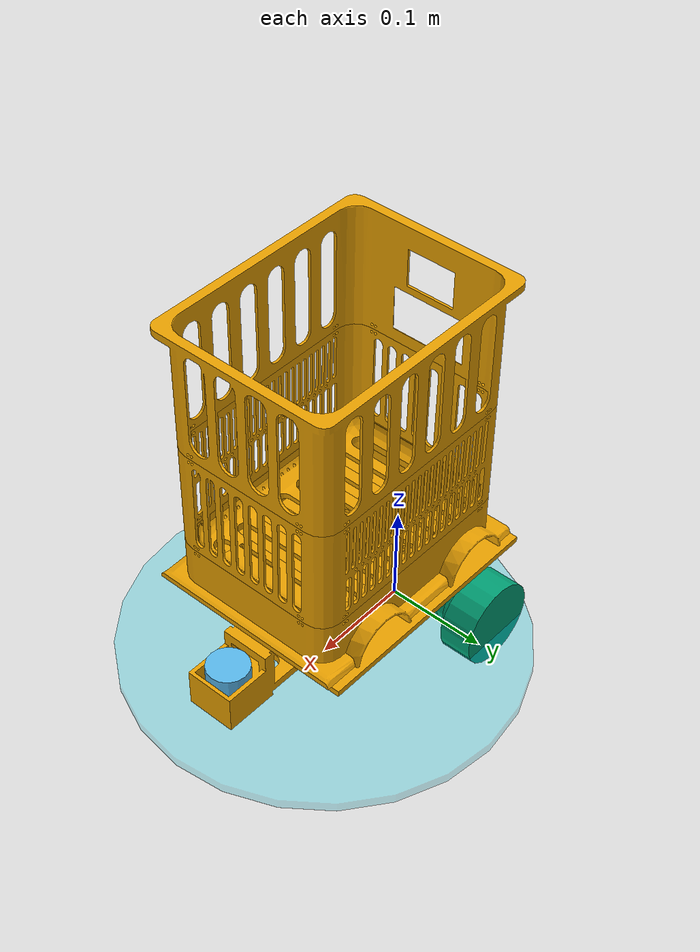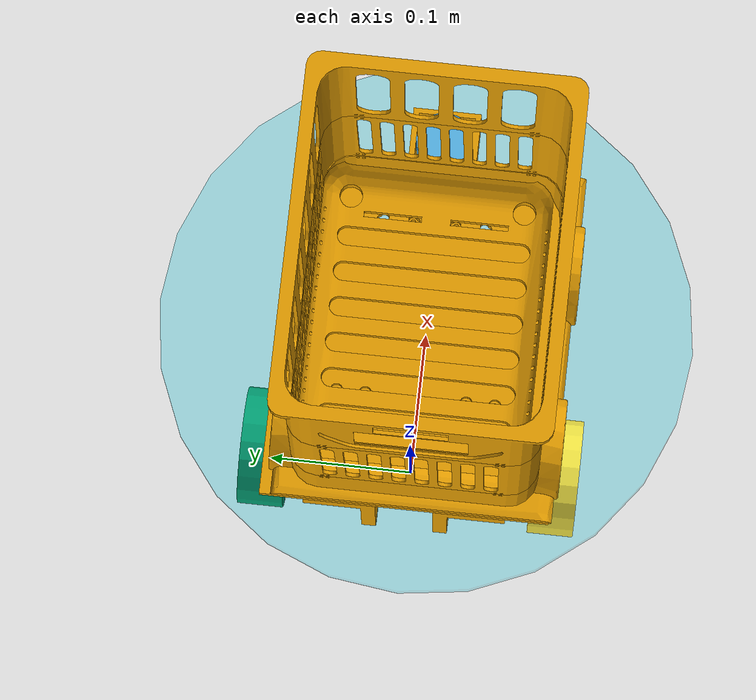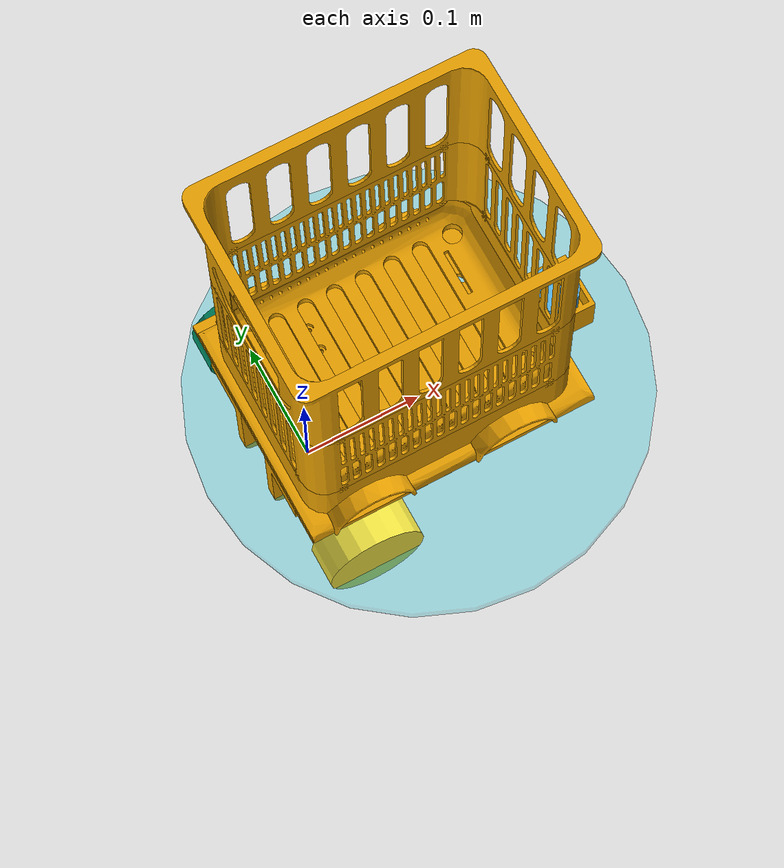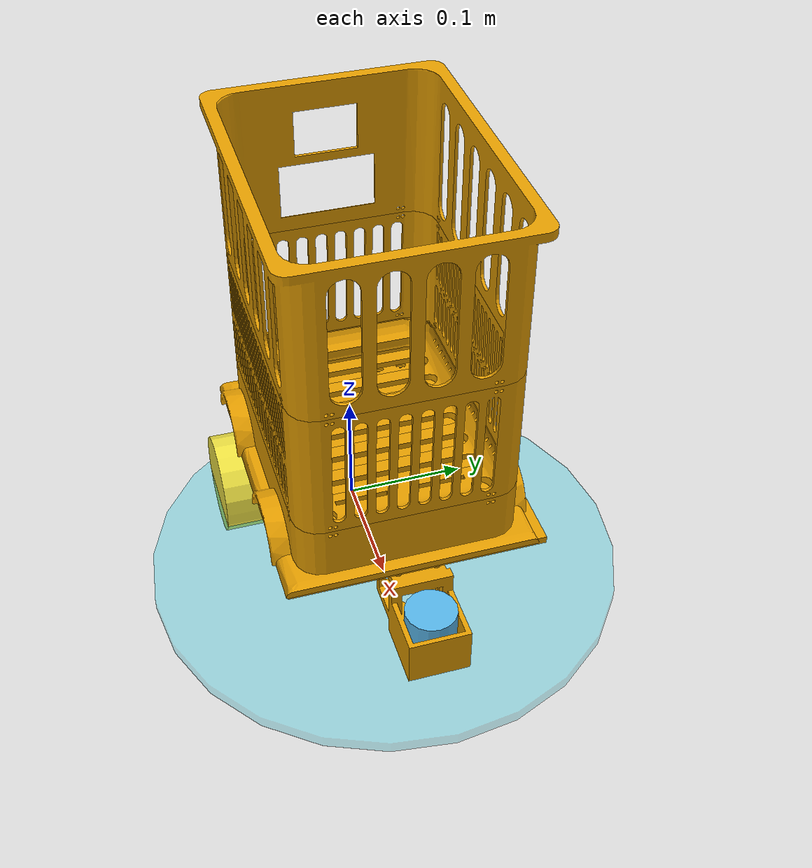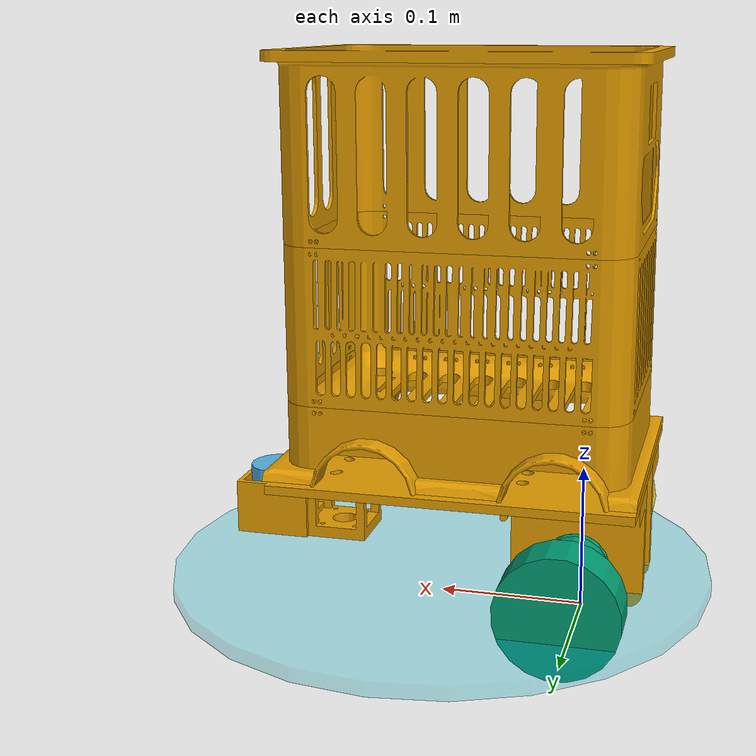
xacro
<?xml version='1.0' encoding='utf-8'?>
<robot name="robot_base" xmlns:xacro="http://www.ros.org/wiki/xacro">
  <xacro:arg name="use_gazebo" default="false"/>

  <link name="base_link">
    <inertial>
      <origin xyz="-0.0051398083 -0.0021382631 0.04742393" rpy="0 0 0" />
      <mass value="1.4681587" />
      <inertia ixx="0.017290002" iyy="0.02246485" izz="0.015502688" ixy="2.1992707e-05" ixz="-0.00056437299" iyz="0.00021826042" />
    </inertial>
    <visual>
      <origin xyz="0.39559392 0.067257614 -0.65665369" rpy="0 0 0" />
      <geometry>
        <mesh filename="package://robot_base_description/meshes/part_042_solid_042.stl" />
      </geometry>
    </visual>
    <visual>
      <origin xyz="0.39559392 0.067257614 -0.65665369" rpy="0 0 0" />
      <geometry>
        <mesh filename="package://robot_base_description/meshes/part_001_solid_001.stl" />
      </geometry>
    </visual>
    <visual>
      <origin xyz="0.39559392 0.067257614 -0.65665369" rpy="0 0 0" />
      <geometry>
        <mesh filename="package://robot_base_description/meshes/part_046_solid_046.stl" />
      </geometry>
    </visual>
    <visual>
      <origin xyz="0.39559392 0.067257614 -0.65665369" rpy="0 0 0" />
      <geometry>
        <mesh filename="package://robot_base_description/meshes/part_044_solid_044.stl" />
      </geometry>
    </visual>
    <visual>
      <origin xyz="0.39559392 0.067257614 -0.65665369" rpy="0 0 0" />
      <geometry>
        <mesh filename="package://robot_base_description/meshes/part_045_solid_045.stl" />
      </geometry>
    </visual>
    <visual>
      <origin xyz="0.39559392 0.067257614 -0.65665369" rpy="0 0 0" />
      <geometry>
        <mesh filename="package://robot_base_description/meshes/part_041_solid_041.stl" />
      </geometry>
    </visual>
    <visual>
      <origin xyz="0.39559392 0.067257614 -0.65665369" rpy="0 0 0" />
      <geometry>
        <mesh filename="package://robot_base_description/meshes/part_040_solid_040.stl" />
      </geometry>
    </visual>
    <visual>
      <origin xyz="0.39559392 0.067257614 -0.65665369" rpy="0 0 0" />
      <geometry>
        <mesh filename="package://robot_base_description/meshes/part_043_solid_043.stl" />
      </geometry>
    </visual>
    <collision>
      <origin xyz="0.39559392 0.067257614 -0.65665369" rpy="0 0 0" />
      <geometry>
        <mesh filename="package://robot_base_description/meshes/part_042_solid_042.stl" />
      </geometry>
    </collision>
    <collision>
      <origin xyz="0.39559392 0.067257614 -0.65665369" rpy="0 0 0" />
      <geometry>
        <mesh filename="package://robot_base_description/meshes/part_001_solid_001.stl" />
      </geometry>
    </collision>
    <collision>
      <origin xyz="0.39559392 0.067257614 -0.65665369" rpy="0 0 0" />
      <geometry>
        <mesh filename="package://robot_base_description/meshes/part_046_solid_046.stl" />
      </geometry>
    </collision>
    <collision>
      <origin xyz="0.39559392 0.067257614 -0.65665369" rpy="0 0 0" />
      <geometry>
        <mesh filename="package://robot_base_description/meshes/part_044_solid_044.stl" />
      </geometry>
    </collision>
    <collision>
      <origin xyz="0.39559392 0.067257614 -0.65665369" rpy="0 0 0" />
      <geometry>
        <mesh filename="package://robot_base_description/meshes/part_045_solid_045.stl" />
      </geometry>
    </collision>
    <collision>
      <origin xyz="0.39559392 0.067257614 -0.65665369" rpy="0 0 0" />
      <geometry>
        <mesh filename="package://robot_base_description/meshes/part_041_solid_041.stl" />
      </geometry>
    </collision>
    <collision>
      <origin xyz="0.39559392 0.067257614 -0.65665369" rpy="0 0 0" />
      <geometry>
        <mesh filename="package://robot_base_description/meshes/part_040_solid_040.stl" />
      </geometry>
    </collision>
    <collision>
      <origin xyz="0.39559392 0.067257614 -0.65665369" rpy="0 0 0" />
      <geometry>
        <mesh filename="package://robot_base_description/meshes/part_043_solid_043.stl" />
      </geometry>
    </collision>
  </link>
  <link name="link_laser">
    <inertial>
      <origin xyz="-0.24809391 -0.067257614 0.62490369" rpy="0 0 0" />
      <mass value="0.044085142" />
      <inertia ixx="7.6030417e-06" iyy="7.6030416e-06" izz="8.5933119e-06" ixy="0" ixz="0" iyz="0" />
    </inertial>
    <visual>
      <origin xyz="0 0 0" rpy="0 0 0" />
      <geometry>
        <mesh filename="package://robot_base_description/meshes/part_049_solid_049.stl" />
      </geometry>
    </visual>
    <collision>
      <origin xyz="0 0 0" rpy="0 0 0" />
      <geometry>
        <mesh filename="package://robot_base_description/meshes/part_049_solid_049.stl" />
      </geometry>
    </collision>
  </link>
  <link name="left_wheel_link">
    <inertial>
      <origin xyz="-2.1481237e-06 3.0608298e-05 -0.0084984798" rpy="0 0 0" />
      <mass value="0.27362524" />
      <inertia ixx="0.00018914743" iyy="0.00018911792" izz="0.00018961138" ixy="-6.5437074e-09" ixz="-3.4554952e-08" iyz="4.2352821e-07" />
    </inertial>
    <visual>
      <origin xyz="0.47059391 0.59465371 -0.034742386" rpy="1.5707963 0 0" />
      <geometry>
        <mesh filename="package://robot_base_description/meshes/part_002_solid_002.stl" />
      </geometry>
    </visual>
    <visual>
      <origin xyz="0.47059391 0.59465371 -0.034742386" rpy="1.5707963 0 0" />
      <geometry>
        <mesh filename="package://robot_base_description/meshes/part_003_solid_003.stl" />
      </geometry>
    </visual>
    <visual>
      <origin xyz="0.47059391 0.59465371 -0.034742386" rpy="1.5707963 0 0" />
      <geometry>
        <mesh filename="package://robot_base_description/meshes/part_004_solid_004.stl" />
      </geometry>
    </visual>
    <visual>
      <origin xyz="0.47059391 0.59465371 -0.034742386" rpy="1.5707963 0 0" />
      <geometry>
        <mesh filename="package://robot_base_description/meshes/part_005_solid_005.stl" />
      </geometry>
    </visual>
    <visual>
      <origin xyz="0.47059391 0.59465371 -0.034742386" rpy="1.5707963 0 0" />
      <geometry>
        <mesh filename="package://robot_base_description/meshes/part_006_solid_006.stl" />
      </geometry>
    </visual>
    <visual>
      <origin xyz="0.47059391 0.59465371 -0.034742386" rpy="1.5707963 0 0" />
      <geometry>
        <mesh filename="package://robot_base_description/meshes/part_007_solid_007.stl" />
      </geometry>
    </visual>
    <visual>
      <origin xyz="0.47059391 0.59465371 -0.034742386" rpy="1.5707963 0 0" />
      <geometry>
        <mesh filename="package://robot_base_description/meshes/part_008_solid_008.stl" />
      </geometry>
    </visual>
    <visual>
      <origin xyz="0.47059391 0.59465371 -0.034742386" rpy="1.5707963 0 0" />
      <geometry>
        <mesh filename="package://robot_base_description/meshes/part_009_solid_009.stl" />
      </geometry>
    </visual>
    <visual>
      <origin xyz="0.47059391 0.59465371 -0.034742386" rpy="1.5707963 0 0" />
      <geometry>
        <mesh filename="package://robot_base_description/meshes/part_010_solid_010.stl" />
      </geometry>
    </visual>
    <visual>
      <origin xyz="0.47059391 0.59465371 -0.034742386" rpy="1.5707963 0 0" />
      <geometry>
        <mesh filename="package://robot_base_description/meshes/part_011_solid_011.stl" />
      </geometry>
    </visual>
    <visual>
      <origin xyz="0.47059391 0.59465371 -0.034742386" rpy="1.5707963 0 0" />
      <geometry>
        <mesh filename="package://robot_base_description/meshes/part_012_solid_012.stl" />
      </geometry>
    </visual>
    <visual>
      <origin xyz="0.47059391 0.59465371 -0.034742386" rpy="1.5707963 0 0" />
      <geometry>
        <mesh filename="package://robot_base_description/meshes/part_013_solid_013.stl" />
      </geometry>
    </visual>
    <visual>
      <origin xyz="0.47059391 0.59465371 -0.034742386" rpy="1.5707963 0 0" />
      <geometry>
        <mesh filename="package://robot_base_description/meshes/part_014_solid_014.stl" />
      </geometry>
    </visual>
    <visual>
      <origin xyz="0.47059391 0.59465371 -0.034742386" rpy="1.5707963 0 0" />
      <geometry>
        <mesh filename="package://robot_base_description/meshes/part_015_solid_015.stl" />
      </geometry>
    </visual>
    <visual>
      <origin xyz="0.47059391 0.59465371 -0.034742386" rpy="1.5707963 0 0" />
      <geometry>
        <mesh filename="package://robot_base_description/meshes/part_016_solid_016.stl" />
      </geometry>
    </visual>
    <visual>
      <origin xyz="0.47059391 0.59465371 -0.034742386" rpy="1.5707963 0 0" />
      <geometry>
        <mesh filename="package://robot_base_description/meshes/part_017_solid_017.stl" />
      </geometry>
    </visual>
    <visual>
      <origin xyz="0.47059391 0.59465371 -0.034742386" rpy="1.5707963 0 0" />
      <geometry>
        <mesh filename="package://robot_base_description/meshes/part_018_solid_018.stl" />
      </geometry>
    </visual>
    <visual>
      <origin xyz="0.47059391 0.59465371 -0.034742386" rpy="1.5707963 0 0" />
      <geometry>
        <mesh filename="package://robot_base_description/meshes/part_019_solid_019.stl" />
      </geometry>
    </visual>
    <visual>
      <origin xyz="0.47059391 0.59465371 -0.034742386" rpy="1.5707963 0 0" />
      <geometry>
        <mesh filename="package://robot_base_description/meshes/part_038_solid_038.stl" />
      </geometry>
    </visual>
    <visual>
      <origin xyz="0.47059391 0.59465371 -0.034742386" rpy="1.5707963 0 0" />
      <geometry>
        <mesh filename="package://robot_base_description/meshes/part_048_solid_048.stl" />
      </geometry>
    </visual>
    <collision>
      <origin xyz="0.47059391 0.59465371 -0.034742386" rpy="1.5707963 0 0" />
      <geometry>
        <mesh filename="package://robot_base_description/meshes/part_002_solid_002.stl" />
      </geometry>
    </collision>
    <collision>
      <origin xyz="0.47059391 0.59465371 -0.034742386" rpy="1.5707963 0 0" />
      <geometry>
        <mesh filename="package://robot_base_description/meshes/part_003_solid_003.stl" />
      </geometry>
    </collision>
    <collision>
      <origin xyz="0.47059391 0.59465371 -0.034742386" rpy="1.5707963 0 0" />
      <geometry>
        <mesh filename="package://robot_base_description/meshes/part_004_solid_004.stl" />
      </geometry>
    </collision>
    <collision>
      <origin xyz="0.47059391 0.59465371 -0.034742386" rpy="1.5707963 0 0" />
      <geometry>
        <mesh filename="package://robot_base_description/meshes/part_005_solid_005.stl" />
      </geometry>
    </collision>
    <collision>
      <origin xyz="0.47059391 0.59465371 -0.034742386" rpy="1.5707963 0 0" />
      <geometry>
        <mesh filename="package://robot_base_description/meshes/part_006_solid_006.stl" />
      </geometry>
    </collision>
    <collision>
      <origin xyz="0.47059391 0.59465371 -0.034742386" rpy="1.5707963 0 0" />
      <geometry>
        <mesh filename="package://robot_base_description/meshes/part_007_solid_007.stl" />
      </geometry>
    </collision>
    <collision>
      <origin xyz="0.47059391 0.59465371 -0.034742386" rpy="1.5707963 0 0" />
      <geometry>
        <mesh filename="package://robot_base_description/meshes/part_008_solid_008.stl" />
      </geometry>
    </collision>
    <collision>
      <origin xyz="0.47059391 0.59465371 -0.034742386" rpy="1.5707963 0 0" />
      <geometry>
        <mesh filename="package://robot_base_description/meshes/part_009_solid_009.stl" />
      </geometry>
    </collision>
    <collision>
      <origin xyz="0.47059391 0.59465371 -0.034742386" rpy="1.5707963 0 0" />
      <geometry>
        <mesh filename="package://robot_base_description/meshes/part_010_solid_010.stl" />
      </geometry>
    </collision>
    <collision>
      <origin xyz="0.47059391 0.59465371 -0.034742386" rpy="1.5707963 0 0" />
      <geometry>
        <mesh filename="package://robot_base_description/meshes/part_011_solid_011.stl" />
      </geometry>
    </collision>
    <collision>
      <origin xyz="0.47059391 0.59465371 -0.034742386" rpy="1.5707963 0 0" />
      <geometry>
        <mesh filename="package://robot_base_description/meshes/part_012_solid_012.stl" />
      </geometry>
    </collision>
    <collision>
      <origin xyz="0.47059391 0.59465371 -0.034742386" rpy="1.5707963 0 0" />
      <geometry>
        <mesh filename="package://robot_base_description/meshes/part_013_solid_013.stl" />
      </geometry>
    </collision>
    <collision>
      <origin xyz="0.47059391 0.59465371 -0.034742386" rpy="1.5707963 0 0" />
      <geometry>
        <mesh filename="package://robot_base_description/meshes/part_014_solid_014.stl" />
      </geometry>
    </collision>
    <collision>
      <origin xyz="0.47059391 0.59465371 -0.034742386" rpy="1.5707963 0 0" />
      <geometry>
        <mesh filename="package://robot_base_description/meshes/part_015_solid_015.stl" />
      </geometry>
    </collision>
    <collision>
      <origin xyz="0.47059391 0.59465371 -0.034742386" rpy="1.5707963 0 0" />
      <geometry>
        <mesh filename="package://robot_base_description/meshes/part_016_solid_016.stl" />
      </geometry>
    </collision>
    <collision>
      <origin xyz="0.47059391 0.59465371 -0.034742386" rpy="1.5707963 0 0" />
      <geometry>
        <mesh filename="package://robot_base_description/meshes/part_017_solid_017.stl" />
      </geometry>
    </collision>
    <collision>
      <origin xyz="0.47059391 0.59465371 -0.034742386" rpy="1.5707963 0 0" />
      <geometry>
        <mesh filename="package://robot_base_description/meshes/part_018_solid_018.stl" />
      </geometry>
    </collision>
    <collision>
      <origin xyz="0.47059391 0.59465371 -0.034742386" rpy="1.5707963 0 0" />
      <geometry>
        <mesh filename="package://robot_base_description/meshes/part_019_solid_019.stl" />
      </geometry>
    </collision>
    <collision>
      <origin xyz="0.47059391 0.59465371 -0.034742386" rpy="1.5707963 0 0" />
      <geometry>
        <mesh filename="package://robot_base_description/meshes/part_038_solid_038.stl" />
      </geometry>
    </collision>
    <collision>
      <origin xyz="0.47059391 0.59465371 -0.034742386" rpy="1.5707963 0 0" />
      <geometry>
        <mesh filename="package://robot_base_description/meshes/part_048_solid_048.stl" />
      </geometry>
    </collision>
  </link>
  <link name="right_wheel_link">
    <inertial>
      <origin xyz="-2.1412047e-06 3.0624321e-05 -0.024498476" rpy="0 0 0" />
      <mass value="0.27362527" />
      <inertia ixx="0.00018914751" iyy="0.0001891179" izz="0.00018961146" ixy="-6.5383636e-09" ixz="-3.4533487e-08" iyz="4.2354835e-07" />
    </inertial>
    <visual>
      <origin xyz="0.47059391 -0.59465371 -0.18525761" rpy="-1.5707963 0 0" />
      <geometry>
        <mesh filename="package://robot_base_description/meshes/part_020_solid_020.stl" />
      </geometry>
    </visual>
    <visual>
      <origin xyz="0.47059391 -0.59465371 -0.18525761" rpy="-1.5707963 0 0" />
      <geometry>
        <mesh filename="package://robot_base_description/meshes/part_021_solid_021.stl" />
      </geometry>
    </visual>
    <visual>
      <origin xyz="0.47059391 -0.59465371 -0.18525761" rpy="-1.5707963 0 0" />
      <geometry>
        <mesh filename="package://robot_base_description/meshes/part_022_solid_022.stl" />
      </geometry>
    </visual>
    <visual>
      <origin xyz="0.47059391 -0.59465371 -0.18525761" rpy="-1.5707963 0 0" />
      <geometry>
        <mesh filename="package://robot_base_description/meshes/part_023_solid_023.stl" />
      </geometry>
    </visual>
    <visual>
      <origin xyz="0.47059391 -0.59465371 -0.18525761" rpy="-1.5707963 0 0" />
      <geometry>
        <mesh filename="package://robot_base_description/meshes/part_024_solid_024.stl" />
      </geometry>
    </visual>
    <visual>
      <origin xyz="0.47059391 -0.59465371 -0.18525761" rpy="-1.5707963 0 0" />
      <geometry>
        <mesh filename="package://robot_base_description/meshes/part_025_solid_025.stl" />
      </geometry>
    </visual>
    <visual>
      <origin xyz="0.47059391 -0.59465371 -0.18525761" rpy="-1.5707963 0 0" />
      <geometry>
        <mesh filename="package://robot_base_description/meshes/part_026_solid_026.stl" />
      </geometry>
    </visual>
    <visual>
      <origin xyz="0.47059391 -0.59465371 -0.18525761" rpy="-1.5707963 0 0" />
      <geometry>
        <mesh filename="package://robot_base_description/meshes/part_027_solid_027.stl" />
      </geometry>
    </visual>
    <visual>
      <origin xyz="0.47059391 -0.59465371 -0.18525761" rpy="-1.5707963 0 0" />
      <geometry>
        <mesh filename="package://robot_base_description/meshes/part_028_solid_028.stl" />
      </geometry>
    </visual>
    <visual>
      <origin xyz="0.47059391 -0.59465371 -0.18525761" rpy="-1.5707963 0 0" />
      <geometry>
        <mesh filename="package://robot_base_description/meshes/part_029_solid_029.stl" />
      </geometry>
    </visual>
    <visual>
      <origin xyz="0.47059391 -0.59465371 -0.18525761" rpy="-1.5707963 0 0" />
      <geometry>
        <mesh filename="package://robot_base_description/meshes/part_030_solid_030.stl" />
      </geometry>
    </visual>
    <visual>
      <origin xyz="0.47059391 -0.59465371 -0.18525761" rpy="-1.5707963 0 0" />
      <geometry>
        <mesh filename="package://robot_base_description/meshes/part_031_solid_031.stl" />
      </geometry>
    </visual>
    <visual>
      <origin xyz="0.47059391 -0.59465371 -0.18525761" rpy="-1.5707963 0 0" />
      <geometry>
        <mesh filename="package://robot_base_description/meshes/part_032_solid_032.stl" />
      </geometry>
    </visual>
    <visual>
      <origin xyz="0.47059391 -0.59465371 -0.18525761" rpy="-1.5707963 0 0" />
      <geometry>
        <mesh filename="package://robot_base_description/meshes/part_033_solid_033.stl" />
      </geometry>
    </visual>
    <visual>
      <origin xyz="0.47059391 -0.59465371 -0.18525761" rpy="-1.5707963 0 0" />
      <geometry>
        <mesh filename="package://robot_base_description/meshes/part_034_solid_034.stl" />
      </geometry>
    </visual>
    <visual>
      <origin xyz="0.47059391 -0.59465371 -0.18525761" rpy="-1.5707963 0 0" />
      <geometry>
        <mesh filename="package://robot_base_description/meshes/part_035_solid_035.stl" />
      </geometry>
    </visual>
    <visual>
      <origin xyz="0.47059391 -0.59465371 -0.18525761" rpy="-1.5707963 0 0" />
      <geometry>
        <mesh filename="package://robot_base_description/meshes/part_036_solid_036.stl" />
      </geometry>
    </visual>
    <visual>
      <origin xyz="0.47059391 -0.59465371 -0.18525761" rpy="-1.5707963 0 0" />
      <geometry>
        <mesh filename="package://robot_base_description/meshes/part_037_solid_037.stl" />
      </geometry>
    </visual>
    <visual>
      <origin xyz="0.47059391 -0.59465371 -0.18525761" rpy="-1.5707963 0 0" />
      <geometry>
        <mesh filename="package://robot_base_description/meshes/part_039_solid_039.stl" />
      </geometry>
    </visual>
    <visual>
      <origin xyz="0.47059391 -0.59465371 -0.18525761" rpy="-1.5707963 0 0" />
      <geometry>
        <mesh filename="package://robot_base_description/meshes/part_047_solid_047.stl" />
      </geometry>
    </visual>
    <collision>
      <origin xyz="0.47059391 -0.59465371 -0.18525761" rpy="-1.5707963 0 0" />
      <geometry>
        <mesh filename="package://robot_base_description/meshes/part_020_solid_020.stl" />
      </geometry>
    </collision>
    <collision>
      <origin xyz="0.47059391 -0.59465371 -0.18525761" rpy="-1.5707963 0 0" />
      <geometry>
        <mesh filename="package://robot_base_description/meshes/part_021_solid_021.stl" />
      </geometry>
    </collision>
    <collision>
      <origin xyz="0.47059391 -0.59465371 -0.18525761" rpy="-1.5707963 0 0" />
      <geometry>
        <mesh filename="package://robot_base_description/meshes/part_022_solid_022.stl" />
      </geometry>
    </collision>
    <collision>
      <origin xyz="0.47059391 -0.59465371 -0.18525761" rpy="-1.5707963 0 0" />
      <geometry>
        <mesh filename="package://robot_base_description/meshes/part_023_solid_023.stl" />
      </geometry>
    </collision>
    <collision>
      <origin xyz="0.47059391 -0.59465371 -0.18525761" rpy="-1.5707963 0 0" />
      <geometry>
        <mesh filename="package://robot_base_description/meshes/part_024_solid_024.stl" />
      </geometry>
    </collision>
    <collision>
      <origin xyz="0.47059391 -0.59465371 -0.18525761" rpy="-1.5707963 0 0" />
      <geometry>
        <mesh filename="package://robot_base_description/meshes/part_025_solid_025.stl" />
      </geometry>
    </collision>
    <collision>
      <origin xyz="0.47059391 -0.59465371 -0.18525761" rpy="-1.5707963 0 0" />
      <geometry>
        <mesh filename="package://robot_base_description/meshes/part_026_solid_026.stl" />
      </geometry>
    </collision>
    <collision>
      <origin xyz="0.47059391 -0.59465371 -0.18525761" rpy="-1.5707963 0 0" />
      <geometry>
        <mesh filename="package://robot_base_description/meshes/part_027_solid_027.stl" />
      </geometry>
    </collision>
    <collision>
      <origin xyz="0.47059391 -0.59465371 -0.18525761" rpy="-1.5707963 0 0" />
      <geometry>
        <mesh filename="package://robot_base_description/meshes/part_028_solid_028.stl" />
      </geometry>
    </collision>
    <collision>
      <origin xyz="0.47059391 -0.59465371 -0.18525761" rpy="-1.5707963 0 0" />
      <geometry>
        <mesh filename="package://robot_base_description/meshes/part_029_solid_029.stl" />
      </geometry>
    </collision>
    <collision>
      <origin xyz="0.47059391 -0.59465371 -0.18525761" rpy="-1.5707963 0 0" />
      <geometry>
        <mesh filename="package://robot_base_description/meshes/part_030_solid_030.stl" />
      </geometry>
    </collision>
    <collision>
      <origin xyz="0.47059391 -0.59465371 -0.18525761" rpy="-1.5707963 0 0" />
      <geometry>
        <mesh filename="package://robot_base_description/meshes/part_031_solid_031.stl" />
      </geometry>
    </collision>
    <collision>
      <origin xyz="0.47059391 -0.59465371 -0.18525761" rpy="-1.5707963 0 0" />
      <geometry>
        <mesh filename="package://robot_base_description/meshes/part_032_solid_032.stl" />
      </geometry>
    </collision>
    <collision>
      <origin xyz="0.47059391 -0.59465371 -0.18525761" rpy="-1.5707963 0 0" />
      <geometry>
        <mesh filename="package://robot_base_description/meshes/part_033_solid_033.stl" />
      </geometry>
    </collision>
    <collision>
      <origin xyz="0.47059391 -0.59465371 -0.18525761" rpy="-1.5707963 0 0" />
      <geometry>
        <mesh filename="package://robot_base_description/meshes/part_034_solid_034.stl" />
      </geometry>
    </collision>
    <collision>
      <origin xyz="0.47059391 -0.59465371 -0.18525761" rpy="-1.5707963 0 0" />
      <geometry>
        <mesh filename="package://robot_base_description/meshes/part_035_solid_035.stl" />
      </geometry>
    </collision>
    <collision>
      <origin xyz="0.47059391 -0.59465371 -0.18525761" rpy="-1.5707963 0 0" />
      <geometry>
        <mesh filename="package://robot_base_description/meshes/part_036_solid_036.stl" />
      </geometry>
    </collision>
    <collision>
      <origin xyz="0.47059391 -0.59465371 -0.18525761" rpy="-1.5707963 0 0" />
      <geometry>
        <mesh filename="package://robot_base_description/meshes/part_037_solid_037.stl" />
      </geometry>
    </collision>
    <collision>
      <origin xyz="0.47059391 -0.59465371 -0.18525761" rpy="-1.5707963 0 0" />
      <geometry>
        <mesh filename="package://robot_base_description/meshes/part_039_solid_039.stl" />
      </geometry>
    </collision>
    <collision>
      <origin xyz="0.47059391 -0.59465371 -0.18525761" rpy="-1.5707963 0 0" />
      <geometry>
        <mesh filename="package://robot_base_description/meshes/part_047_solid_047.stl" />
      </geometry>
    </collision>
  </link>
  <joint name="link_laser_joint" type="fixed">
    <origin xyz="0.39559392 0.067257614 -0.65665369" rpy="0 0 0" />
    <parent link="base_link" />
    <child link="link_laser" />
  </joint>
  <joint name="left_wheel_joint" type="continuous">
    <origin xyz="-0.07499999 0.102 -0.061999973" rpy="-1.5707963 0 0" />
    <parent link="base_link" />
    <child link="left_wheel_link" />
    <axis xyz="0 0 -1" />
    <limit effort="10" velocity="5" />
  </joint>
  <joint name="right_wheel_joint" type="continuous">
    <origin xyz="-0.07499999 -0.118 -0.061999973" rpy="1.5707963 0 0" />
    <parent link="base_link" />
    <child link="right_wheel_link" />
    <axis xyz="0 0 1" />
    <limit effort="10" velocity="5" />
  </joint>

  <!-- ==========================================================================
       运动学/显示补充
       ========================================================================== -->
  <link name="base_footprint"/>
  <!-- 2026-11-05 修正：车体/base_link 保持 CAD +X 朝向，不再整车旋转 180°。
       之前“模型反了”的根因是 laser_frame 的 yaw 方向错误（见下方
       laser_frame_joint，已改为 +90°），不是车体本身。 -->
  <joint name="base_footprint_joint" type="fixed">
    <parent link="base_footprint"/><child link="base_link"/>
    <origin xyz="0.075 0 0.103" rpy="0 0 0"/>
  </joint>

  <!-- Nav2/Gazebo 用的保守圆形包络：矩形包络 0.291 x 0.236 的外接圆。
       车体保持 CAD 朝向后，包络圆心仍在 +0.1005。 -->
  <link name="navigation_footprint">
    <visual>
      <origin xyz="0 0 0" rpy="0 0 0"/>
      <geometry><cylinder radius="0.19" length="0.01"/></geometry>
      <material name="navigation_boundary"><color rgba="0.0 0.75 0.85 0.30"/></material>
    </visual>
    <xacro:unless value="$(arg use_gazebo)">
      <collision>
        <origin xyz="0 0 0" rpy="0 0 0"/>
        <geometry><cylinder radius="0.19" length="0.01"/></geometry>
      </collision>
    </xacro:unless>
  </link>
  <joint name="navigation_footprint_joint" type="fixed">
    <parent link="base_footprint"/><child link="navigation_footprint"/>
    <origin xyz="0.1005 0 0.02" rpy="0 0 0"/>
  </joint>

  <link name="laser_frame"/>
  <joint name="laser_frame_joint" type="fixed">
    <parent link="link_laser"/><child link="laser_frame"/>
    <origin xyz="-0.24809392 -0.067257614 0.63985369"
            rpy="0 0 1.5707963267948966"/>
  </joint>

  <!-- ros2_control：真机走 USB CDC；仿真走 gz_ros2_control。 -->
  <ros2_control name="RobotBaseSystem" type="system">
    <hardware>
      <xacro:if value="$(arg use_gazebo)">
        <plugin>gz_ros2_control/GazeboSimSystem</plugin>
      </xacro:if>
      <xacro:unless value="$(arg use_gazebo)">
        <plugin>robot_base_driver/RobotBaseSystem</plugin>
        <param name="serial_port">/dev/stm32</param>
        <param name="baud_rate">115200</param>
      </xacro:unless>
    </hardware>
    <joint name="left_wheel_joint">
      <command_interface name="velocity"/>
      <state_interface name="position"/>
      <state_interface name="velocity"/>
    </joint>
    <joint name="right_wheel_joint">
      <command_interface name="velocity"/>
      <state_interface name="position"/>
      <state_interface name="velocity"/>
    </joint>
  </ros2_control>

  <xacro:if value="$(arg use_gazebo)">
    <xacro:include filename="$(find robot_base_description)/urdf/robot_base.gazebo.xacro"/>
    <xacro:gazebo_sim/>
  </xacro:if>
</robot>
